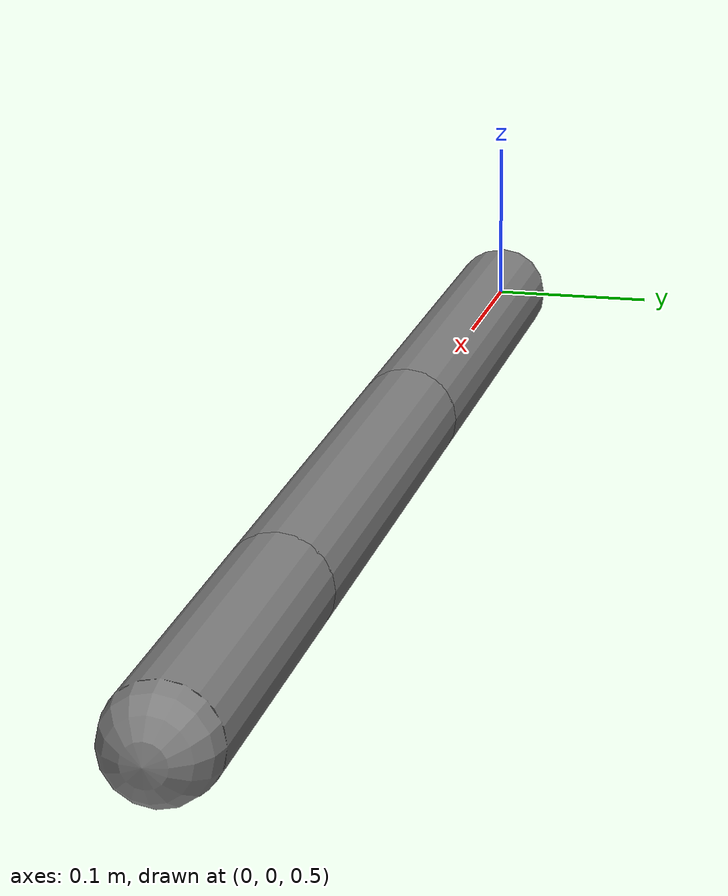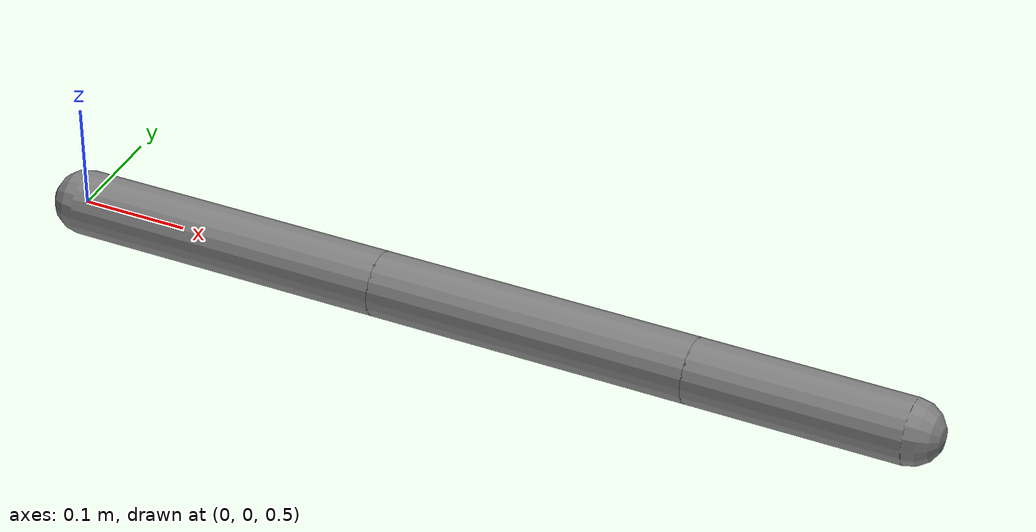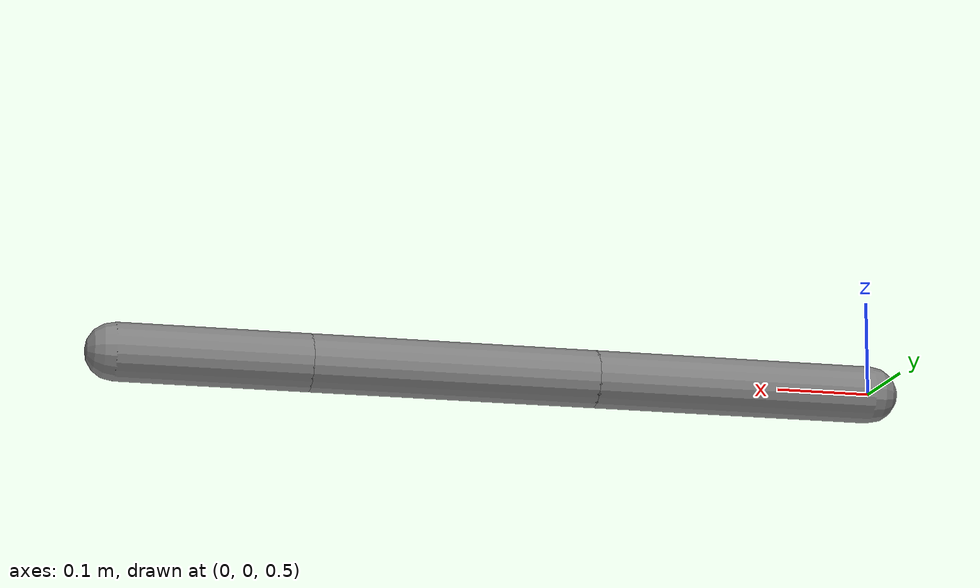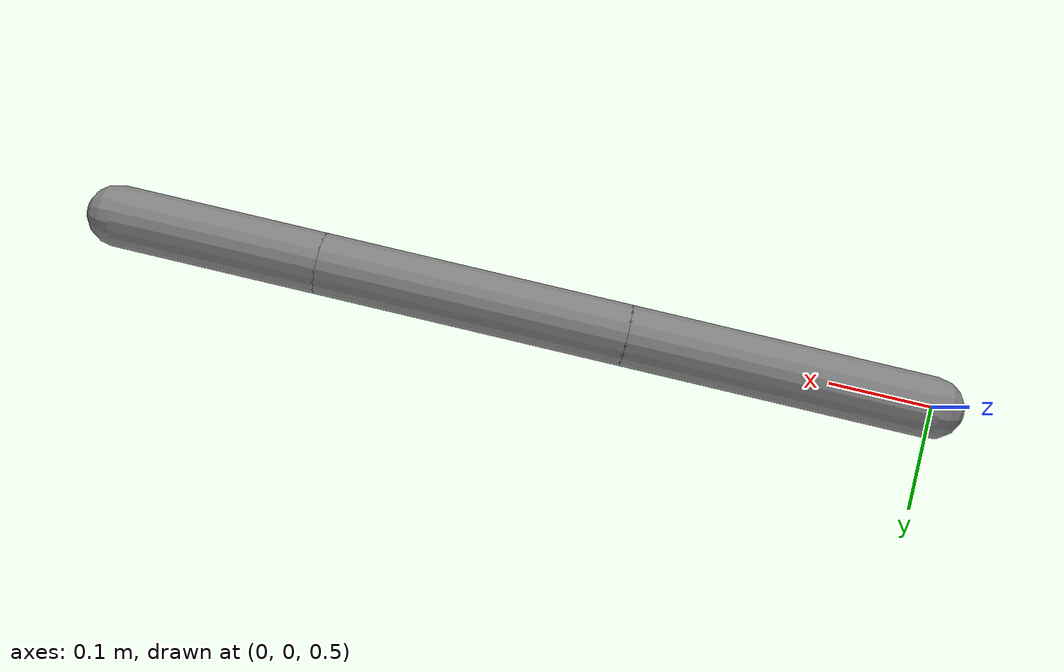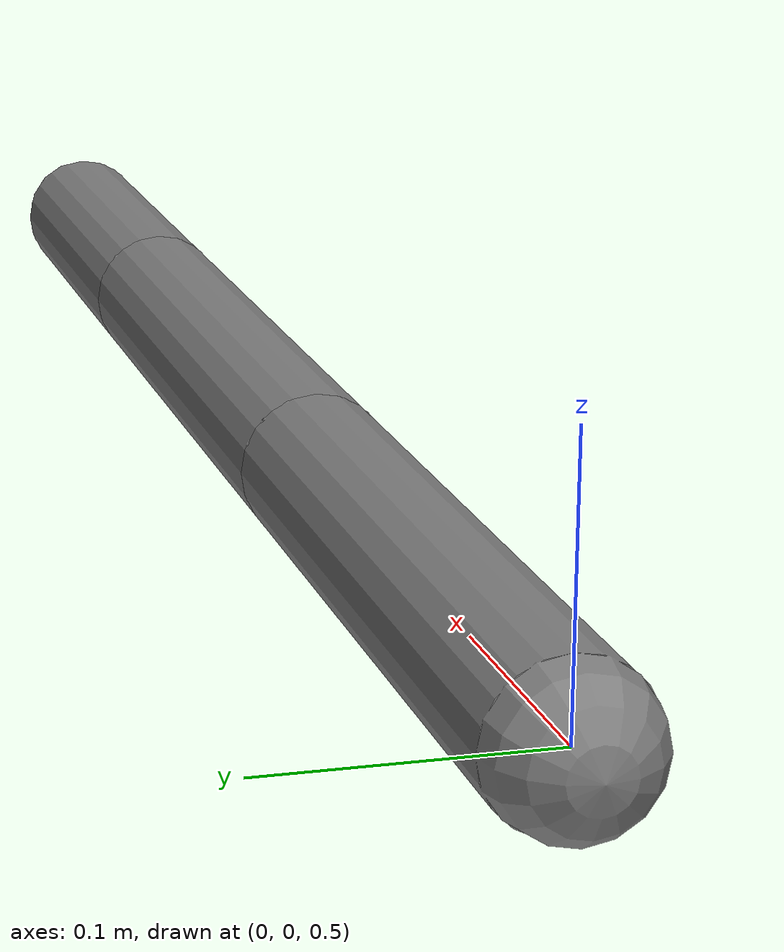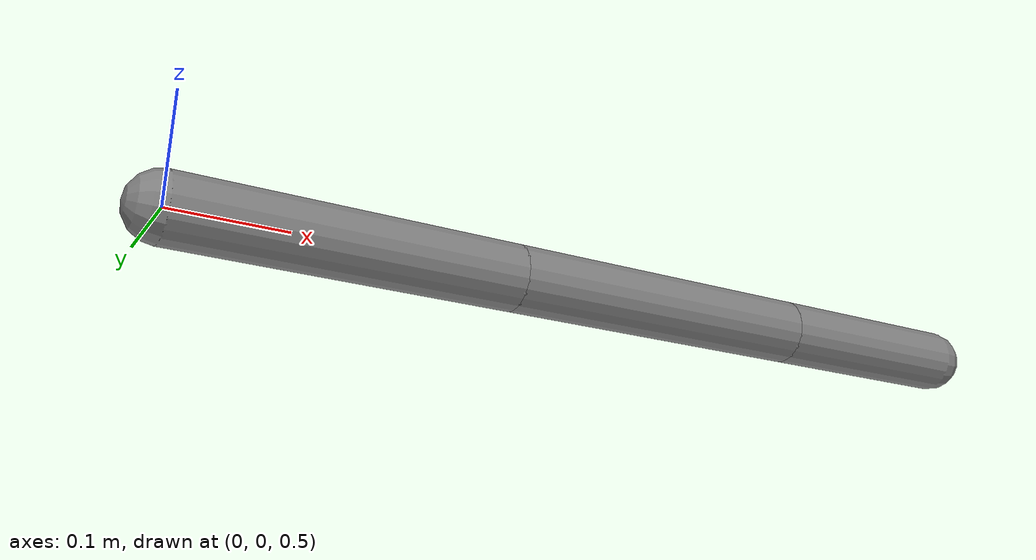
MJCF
<mujoco model="equality">
  <compiler angle="radian"/>
  <worldbody>
    <body name="a" pos="0 0 0.5">
      <joint name="ja" type="hinge" axis="0 1 0" range="-3 3" limited="true"/>
      <geom name="ga" type="capsule" fromto="0 0 0 0.3 0 0" size="0.03"/>
      <body name="b" pos="0.3 0 0">
        <joint name="jb" type="hinge" axis="0 1 0" range="-3 3" limited="true"/>
        <geom name="gb" type="capsule" fromto="0 0 0 0.3 0 0" size="0.03"/>
      </body>
    </body>
    <body name="c" pos="0.6 0 0.5">
      <joint name="jc" type="hinge" axis="0 1 0" range="-3 3" limited="true"/>
      <geom name="gc" type="capsule" fromto="0 0 0 0.2 0 0" size="0.03"/>
    </body>
  </worldbody>
  <equality>
    <connect name="eq_connect" body1="b" body2="c" anchor="0.3 0 0"/>
    <joint name="eq_joint" joint1="ja" joint2="jc" polycoef="0 1 0 0 0"/>
  </equality>
</mujoco>
